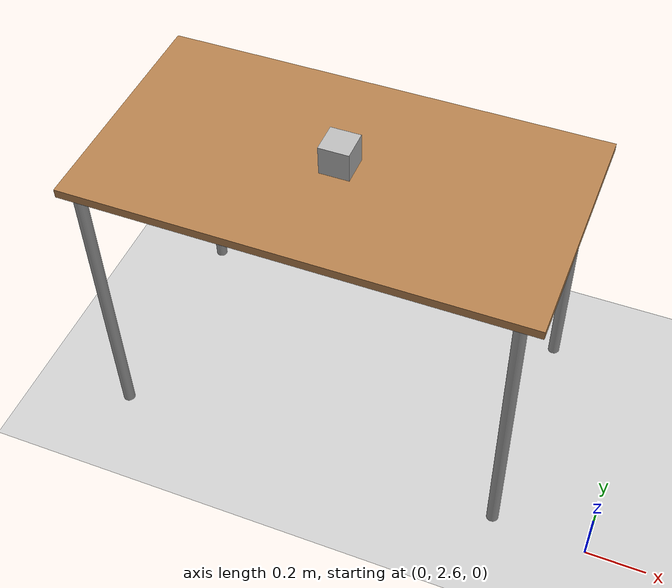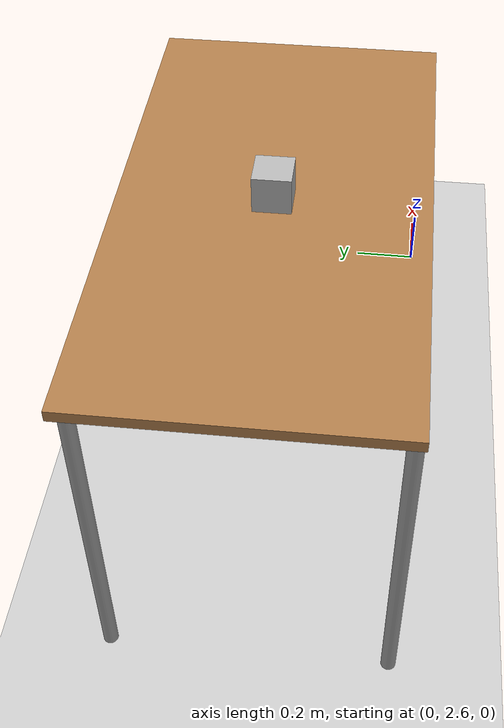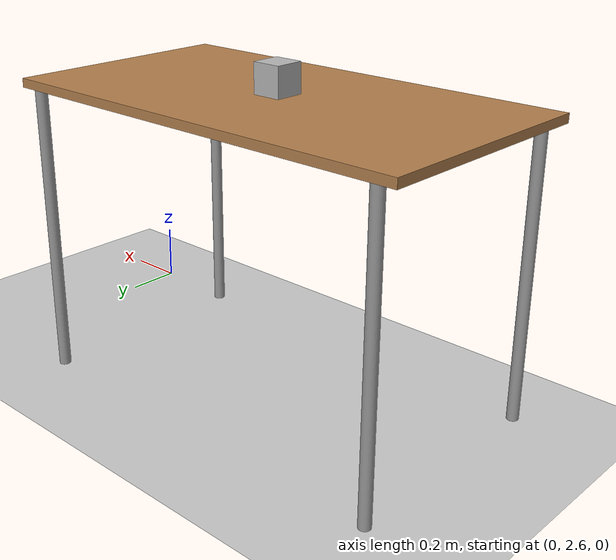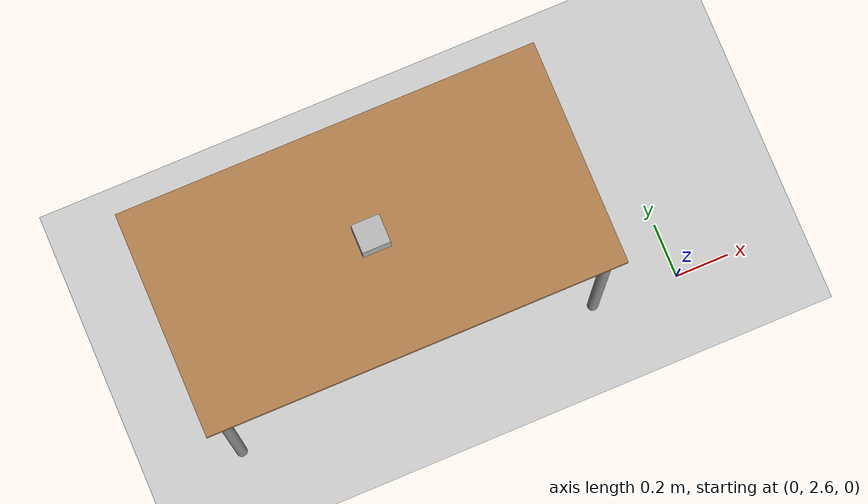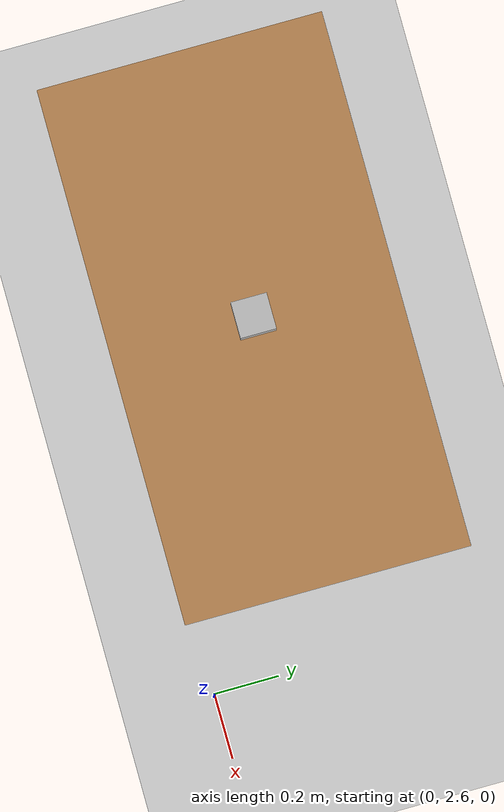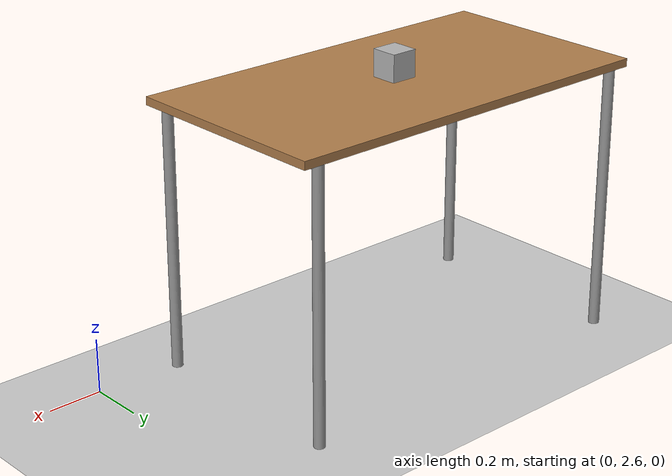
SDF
<sdf version="1.5">
 <world name="default">
  <include><uri>model://ground_plane</uri></include>
  <include><uri>model://sun</uri></include>
  <model name="table">
   <include><uri>model://table</uri><pose>-1 3 0 0 0 0</pose></include>
   <link name="box">
    <pose>-1 3 1.065 0 0 0</pose>
    <inertial>
     <mass>1.0</mass>
     <inertia><ixx>0.083</ixx><ixy>0.0</ixy><ixz>0.0</ixz><iyy>0.083</iyy><iyz>0.0</iyz><izz>0.083</izz></inertia>
    </inertial>
    <collision name="collision"><geometry><box><size>0.1 0.1 0.1</size></box></geometry></collision>
    <visual name="visual"><geometry><box><size>0.1 0.1 0.1</size></box></geometry></visual>
   </link>
  </model>
 </world>
</sdf>

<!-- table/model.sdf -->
<sdf version="1.5">
  <model name="table">
    <static>true</static>
    <link name="link">
      <collision name="surface">
        <pose>0 0 1.0 0 0 0</pose>
        <geometry>
          <box>
            <size>1.5 0.8 0.03</size>
          </box>
        </geometry>
        <surface>
          <friction>
            <ode>
              <mu>0.6</mu>
              <mu2>0.6</mu2>
            </ode>
          </friction>
        </surface>
      </collision>
      <visual name="visual1">
        <pose>0 0 1.0 0 0 0</pose>
        <geometry>
          <box>
            <size>1.5 0.8 0.03</size>
          </box>
        </geometry>
        <material>
          <script>
            <uri>model://media/materials/scripts/gazebo.material</uri>
            <name>Gazebo/Wood</name>
          </script>
        </material>
      </visual>
      <collision name="front_left_leg">
        <pose>0.68 0.38 0.5 0 0 0</pose>
        <geometry>
          <cylinder>
            <radius>0.02</radius>
            <length>1.0</length>
          </cylinder>
        </geometry>
      </collision>
      <visual name="front_left_leg">
        <pose>0.68 0.38 0.5 0 0 0</pose>
        <geometry>
          <cylinder>
            <radius>0.02</radius>
            <length>1.0</length>
          </cylinder>
        </geometry>
        <material>
          <script>
            <uri>model://media/materials/scripts/gazebo.material</uri>
            <name>Gazebo/Grey</name>
          </script>
        </material>
      </visual>
      <collision name="front_right_leg">
        <pose>0.68 -0.38 0.5 0 0 0</pose>
        <geometry>
          <cylinder>
            <radius>0.02</radius>
            <length>1.0</length>
          </cylinder>
        </geometry>
      </collision>
      <visual name="front_right_leg">
        <pose>0.68 -0.38 0.5 0 0 0</pose>
        <geometry>
          <cylinder>
            <radius>0.02</radius>
            <length>1.0</length>
          </cylinder>
        </geometry>
        <material>
          <script>
            <uri>model://media/materials/scripts/gazebo.material</uri>
            <name>Gazebo/Grey</name>
          </script>
        </material>
      </visual>
      <collision name="back_right_leg">
        <pose>-0.68 -0.38 0.5 0 0 0</pose>
        <geometry>
          <cylinder>
            <radius>0.02</radius>
            <length>1.0</length>
          </cylinder>
        </geometry>
      </collision>
      <visual name="back_right_leg">
        <pose>-0.68 -0.38 0.5 0 0 0</pose>
        <geometry>
          <cylinder>
            <radius>0.02</radius>
            <length>1.0</length>
          </cylinder>
        </geometry>
        <material>
          <script>
            <uri>model://media/materials/scripts/gazebo.material</uri>
            <name>Gazebo/Grey</name>
          </script>
        </material>
      </visual>
      <collision name="back_left_leg">
        <pose>-0.68 0.38 0.5 0 0 0</pose>
        <geometry>
          <cylinder>
            <radius>0.02</radius>
            <length>1.0</length>
          </cylinder>
        </geometry>
      </collision>
      <visual name="back_left_leg">
        <pose>-0.68 0.38 0.5 0 0 0</pose>
        <geometry>
          <cylinder>
            <radius>0.02</radius>
            <length>1.0</length>
          </cylinder>
        </geometry>
        <material>
          <script>
            <uri>model://media/materials/scripts/gazebo.material</uri>
            <name>Gazebo/Grey</name>
          </script>
        </material>
      </visual>
    </link>
  </model>
</sdf>
